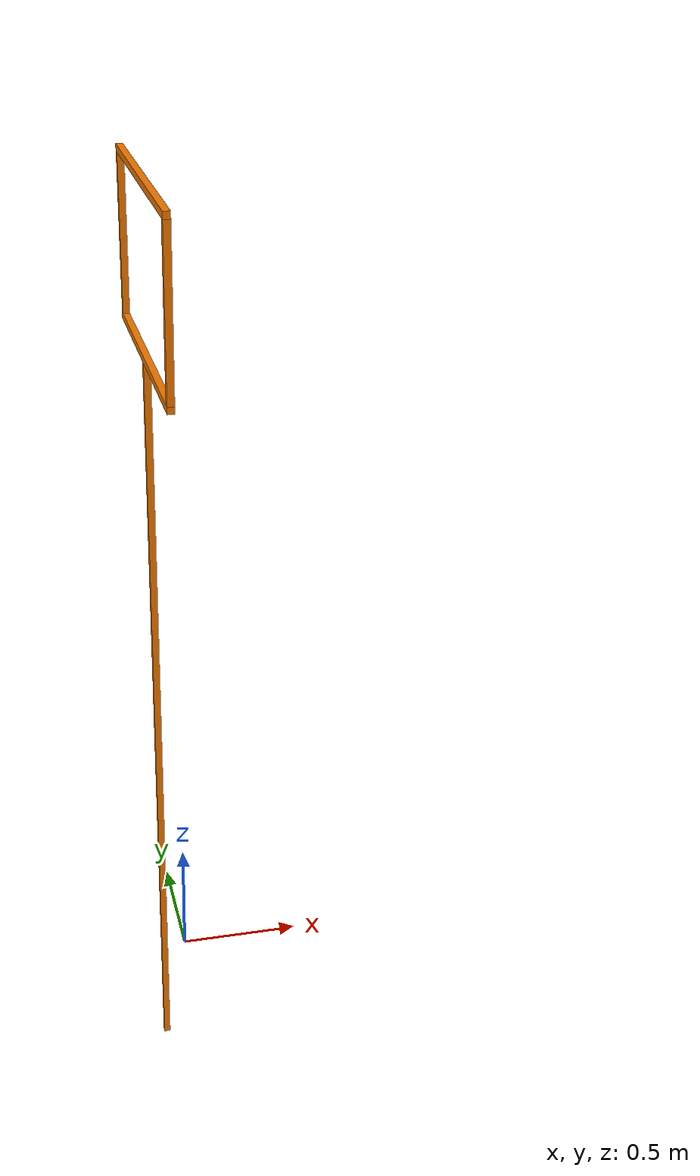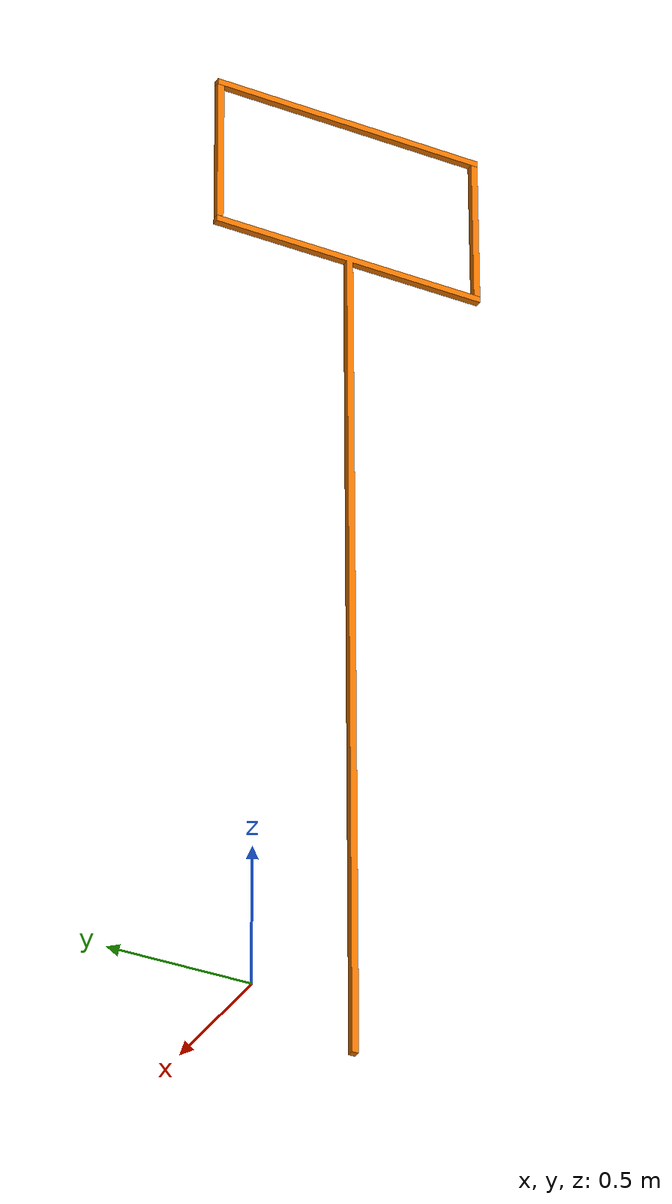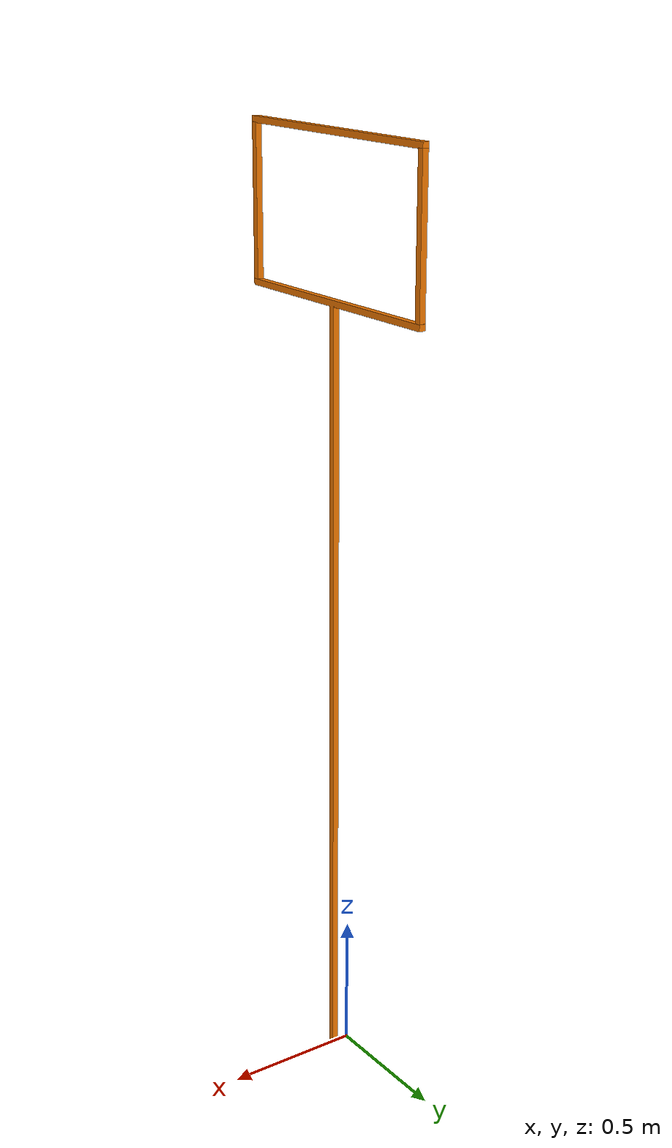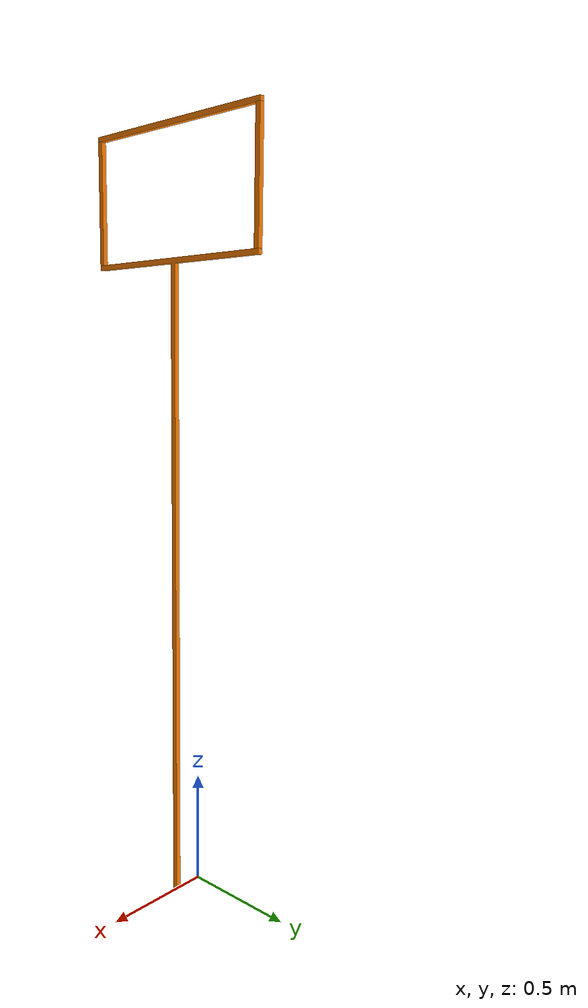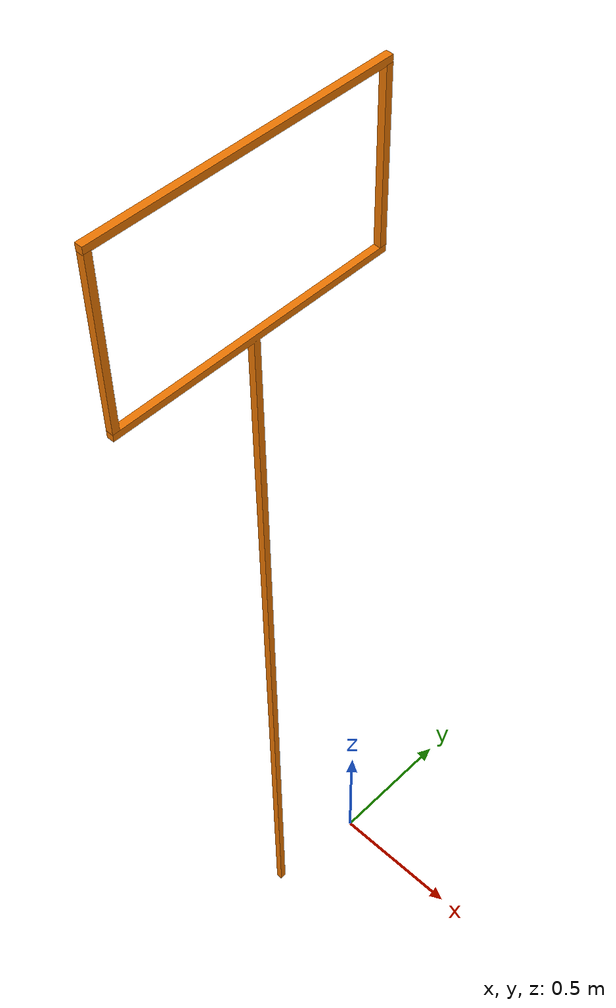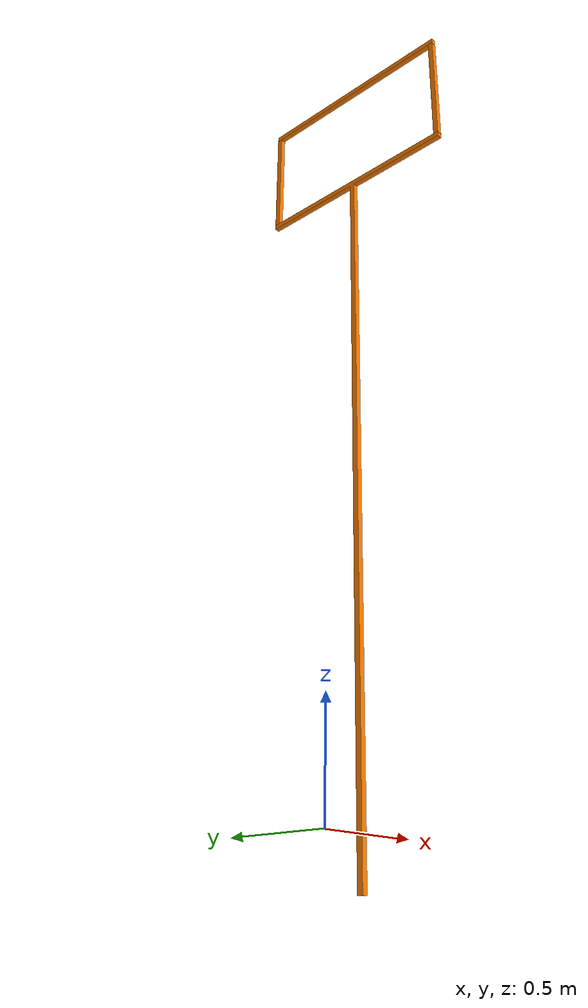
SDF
<?xml version="1.0" ?>
<sdf version="1.5">
  <model name="gate">
    <static>true</static>

    <include>
      <uri>model://stand_gate</uri>
      <name>stand</name>
      <pose>0 0 0 0 0 0</pose>
    </include>

    <include>
      <uri>model://side_gate</uri>
      <name>right_gate</name>
      <pose>-0.267448 -0.283849 0.097 0 0 0</pose>
    </include>

    <include>
      <uri>model://side_gate</uri>
      <name>left_gate</name>
      <pose>-0.267448 -1.257056 0.097 0 0 0</pose>
    </include>
    <include>

      <uri>model://top_gate</uri>
      <name>top_gate</name>
      <pose>-0.269443 -0.280891 0.091764 0 0 0</pose>
    </include>
  </model>
</sdf>

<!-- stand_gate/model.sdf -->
<sdf version="1.5">
  <model name="stand_gate">
    <static>true</static>
    <link name='link'>
      <collision name="collision">
        <geometry>
          <mesh>
            <uri>model://stand_gate/meshes/stand_gate.dae</uri>
            <scale>1 1 1</scale>
          </mesh>
        </geometry>
        <surface>
          <contact>
            <collide_bitmask>0xffff</collide_bitmask>
          </contact>
          <friction>
            <ode>
              <mu>100</mu>
              <mu2>50</mu2>
            </ode>
          </friction>
        </surface>
      </collision>
      <visual name='visual'>
        <geometry>
          <mesh>
            <uri>model://stand_gate/meshes/stand_gate.dae</uri>
            <scale>1 1 1</scale>
          </mesh>
        </geometry>
      </visual>
    </link>
  </model>
</sdf>

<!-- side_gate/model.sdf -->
<sdf version="1.5">
  <model name="side_gate">
    <static>true</static>
    <link name='link'>
      <collision name="collision">
        <geometry>
          <mesh>
            <uri>model://side_gate/meshes/side_gate.dae</uri>
            <scale>1 1 1</scale>
          </mesh>
        </geometry>
        <surface>
          <contact>
            <collide_bitmask>0xffff</collide_bitmask>
          </contact>
          <friction>
            <ode>
              <mu>100</mu>
              <mu2>50</mu2>
            </ode>
          </friction>
        </surface>
      </collision>
      <visual name='visual'>
        <geometry>
          <mesh>
            <uri>model://side_gate/meshes/side_gate.dae</uri>
            <scale>1 1 1</scale>
          </mesh>
        </geometry>
      </visual>
    </link>
  </model>
</sdf>

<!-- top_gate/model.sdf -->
<sdf version="1.5">
  <model name="top_gate">
    <static>true</static>
    <link name='link'>
      <collision name="collision">
        <geometry>
          <mesh>
            <uri>model://top_gate/meshes/top_gate.dae</uri>
            <scale>1 1 1</scale>
          </mesh>
        </geometry>
        <surface>
          <contact>
            <collide_bitmask>0xffff</collide_bitmask>
          </contact>
          <friction>
            <ode>
              <mu>100</mu>
              <mu2>50</mu2>
            </ode>
          </friction>
        </surface>
      </collision>
      <visual name='visual'>
        <geometry>
          <mesh>
            <uri>model://top_gate/meshes/top_gate.dae</uri>
            <scale>1 1 1</scale>
          </mesh>
        </geometry>
      </visual>
    </link>
  </model>
</sdf>
